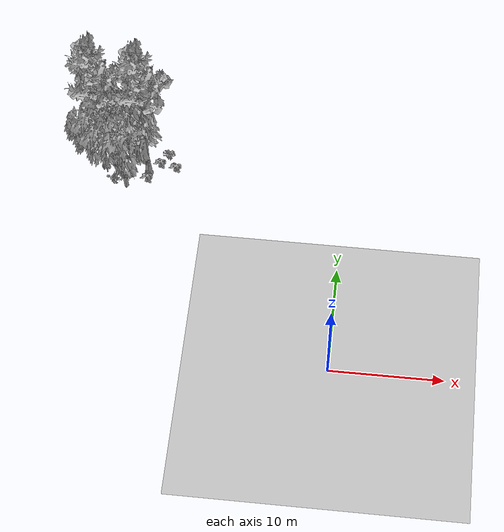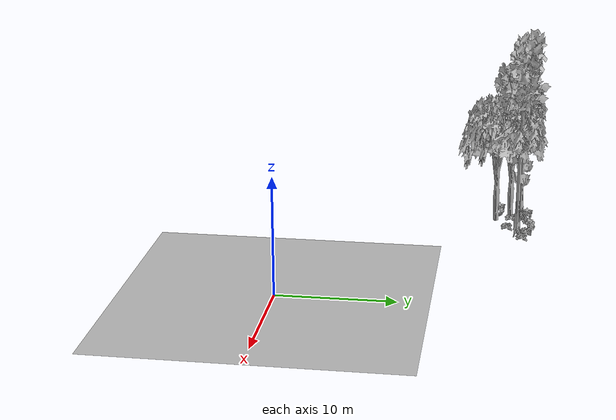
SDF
<sdf version="1.7">
 <world name="default">
  <model name="ground_plane">
   <static>1</static>
   <link name="link">
    <collision name="collision">
     <pose>-50 0 0 0 -0 0</pose>
     <geometry><plane><normal>0 0 1</normal><size>80 80</size></plane></geometry>
     <surface><contact><ode><min_depth>0.01</min_depth><max_vel>0</max_vel></ode></contact></surface>
    </collision>
    <visual name="grass">
     <cast_shadows>0</cast_shadows>
     <geometry>
      <mesh>
       <scale>0.46714285714285714 0.46714285714285714 0.1</scale>
       <uri>file://grass_plane/meshes/grass_plane.dae</uri>
      </mesh>
     </geometry>
    </visual>
   </link>
  </model>
  <model name="Tree 12">
   <static>1</static>
   <pose>-21.076399075654592 18.444348376901267 0 1.57079 -0 0</pose>
   <link name="link">
    <collision name="collision">
     <geometry><mesh><scale>3.5 5 3.5</scale><uri>model://tree_2/meshes/tree_2.obj</uri></mesh></geometry>
    </collision>
    <visual name="visual">
     <geometry><mesh><scale>3.5 5 3.5</scale><uri>model://tree_2/meshes/tree_2.obj</uri></mesh></geometry>
    </visual>
   </link>
  </model>
  <model name="Tree 94">
   <static>1</static>
   <pose>-20.07798586041838 17.139765096862206 0 1.57079 -0 0</pose>
   <link name="link">
    <collision name="collision">
     <geometry><mesh><scale>3.5 5 3.5</scale><uri>model://tree_2/meshes/tree_2.obj</uri></mesh></geometry>
    </collision>
    <visual name="visual">
     <geometry><mesh><scale>3.5 5 3.5</scale><uri>model://tree_2/meshes/tree_2.obj</uri></mesh></geometry>
    </visual>
   </link>
  </model>
  <model name="Tree 150">
   <static>1</static>
   <pose>-22.262713993071344 19.38191110868714 0 1.57079 -0 0</pose>
   <link name="link">
    <collision name="collision">
     <geometry><mesh><scale>3.5 5 3.5</scale><uri>model://tree_9/meshes/tree_9.obj</uri></mesh></geometry>
    </collision>
    <visual name="visual">
     <geometry><mesh><scale>3.5 5 3.5</scale><uri>model://tree_9/meshes/tree_9.obj</uri></mesh></geometry>
    </visual>
   </link>
  </model>
  <model name="Tree 386">
   <static>1</static>
   <pose>-18.202029764748183 19.13240121629989 0 1.57079 -0 0</pose>
   <link name="link">
    <collision name="collision">
     <geometry><mesh><scale>3.5 5 3.5</scale><uri>model://tree_9/meshes/tree_9.obj</uri></mesh></geometry>
    </collision>
    <visual name="visual">
     <geometry><mesh><scale>3.5 5 3.5</scale><uri>model://tree_9/meshes/tree_9.obj</uri></mesh></geometry>
    </visual>
   </link>
  </model>
  <model name="Bush 32">
   <static>1</static>
   <pose>-17.244142115750236 19.905671463035553 0 1.57079 -0 0</pose>
   <link name="link">
    <collision name="collision">
     <geometry><mesh><scale>2 2 2</scale><uri>model://bush_2/meshes/bush_2.obj</uri></mesh></geometry>
     <surface><contact><collide_without_contact>false</collide_without_contact></contact></surface>
    </collision>
    <visual name="visual">
     <geometry><mesh><scale>2 2 2</scale><uri>model://bush_2/meshes/bush_2.obj</uri></mesh></geometry>
    </visual>
   </link>
  </model>
  <model name="Bush 59">
   <static>1</static>
   <pose>-15.7820695367326 19.57494834849865 0 1.57079 -0 0</pose>
   <link name="link">
    <collision name="collision">
     <geometry><mesh><scale>2 2 2</scale><uri>model://bush_2/meshes/bush_2.obj</uri></mesh></geometry>
     <surface><contact><collide_without_contact>false</collide_without_contact></contact></surface>
    </collision>
    <visual name="visual">
     <geometry><mesh><scale>2 2 2</scale><uri>model://bush_2/meshes/bush_2.obj</uri></mesh></geometry>
    </visual>
   </link>
  </model>
  <model name="Bush 84">
   <static>1</static>
   <pose>-19.84485127175493 19.909873468672636 0 1.57079 -0 0</pose>
   <link name="link">
    <collision name="collision">
     <geometry><mesh><scale>2 2 2</scale><uri>model://bush_4/meshes/bush_4.obj</uri></mesh></geometry>
     <surface><contact><collide_without_contact>false</collide_without_contact></contact></surface>
    </collision>
    <visual name="visual">
     <geometry><mesh><scale>2 2 2</scale><uri>model://bush_4/meshes/bush_4.obj</uri></mesh></geometry>
    </visual>
   </link>
  </model>
  <model name="Bush 87">
   <static>1</static>
   <pose>-20.682171921519473 18.52416032888526 0 1.57079 -0 0</pose>
   <link name="link">
    <collision name="collision">
     <geometry><mesh><scale>2 2 2</scale><uri>model://bush_2/meshes/bush_2.obj</uri></mesh></geometry>
     <surface><contact><collide_without_contact>false</collide_without_contact></contact></surface>
    </collision>
    <visual name="visual">
     <geometry><mesh><scale>2 2 2</scale><uri>model://bush_2/meshes/bush_2.obj</uri></mesh></geometry>
    </visual>
   </link>
  </model>
  <model name="Bush 144">
   <static>1</static>
   <pose>-18.267819859673835 18.187704657945893 0 1.57079 -0 0</pose>
   <link name="link">
    <collision name="collision">
     <geometry><mesh><scale>2 2 2</scale><uri>model://bush_2/meshes/bush_2.obj</uri></mesh></geometry>
     <surface><contact><collide_without_contact>false</collide_without_contact></contact></surface>
    </collision>
    <visual name="visual">
     <geometry><mesh><scale>2 2 2</scale><uri>model://bush_2/meshes/bush_2.obj</uri></mesh></geometry>
    </visual>
   </link>
  </model>
  <model name="Bush 455">
   <static>1</static>
   <pose>-16.355319987028928 20.41135570218573 0 1.57079 -0 0</pose>
   <link name="link">
    <collision name="collision">
     <geometry><mesh><scale>2 2 2</scale><uri>model://bush_5/meshes/bush_5.obj</uri></mesh></geometry>
     <surface><contact><collide_without_contact>false</collide_without_contact></contact></surface>
    </collision>
    <visual name="visual">
     <geometry><mesh><scale>2 2 2</scale><uri>model://bush_5/meshes/bush_5.obj</uri></mesh></geometry>
    </visual>
   </link>
  </model>
  <model name="Bush 616">
   <static>1</static>
   <pose>-21.059615372725176 17.383556681605754 0 1.57079 -0 0</pose>
   <link name="link">
    <collision name="collision">
     <geometry><mesh><scale>2 2 2</scale><uri>model://bush_4/meshes/bush_4.obj</uri></mesh></geometry>
     <surface><contact><collide_without_contact>false</collide_without_contact></contact></surface>
    </collision>
    <visual name="visual">
     <geometry><mesh><scale>2 2 2</scale><uri>model://bush_4/meshes/bush_4.obj</uri></mesh></geometry>
    </visual>
   </link>
  </model>
 </world>
</sdf>
